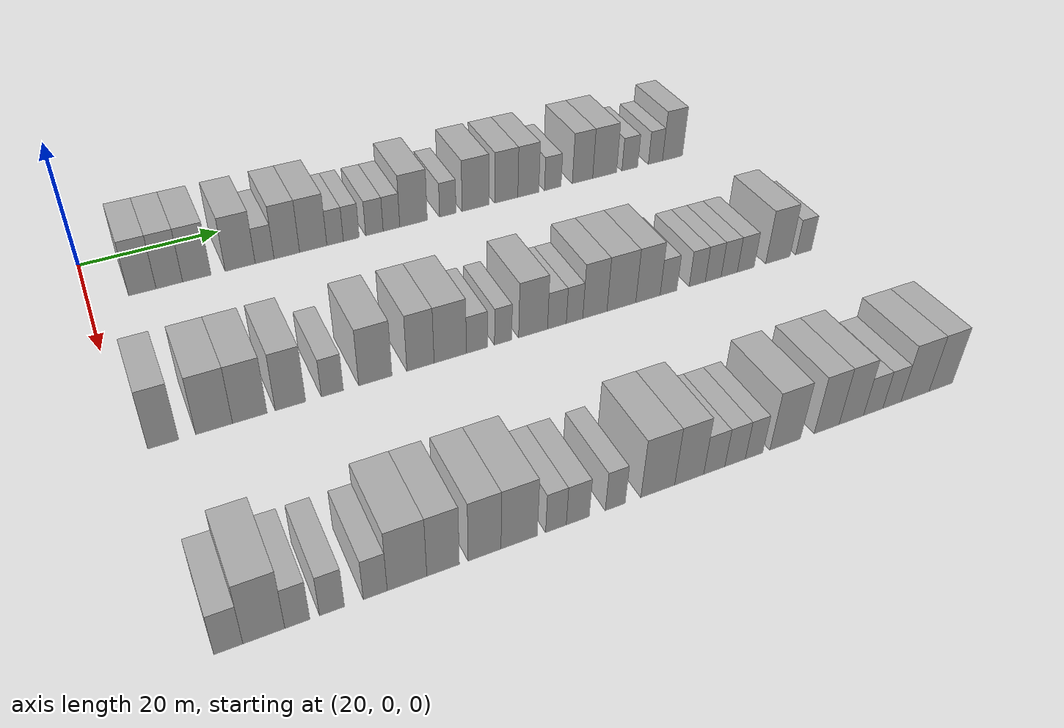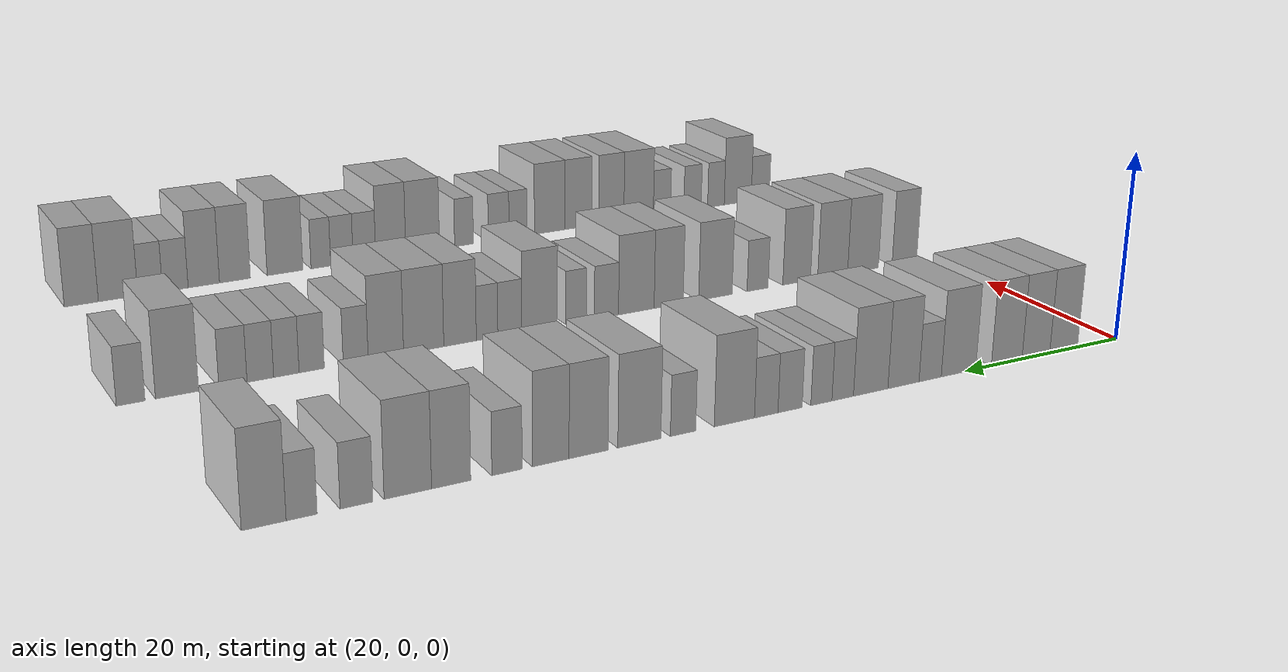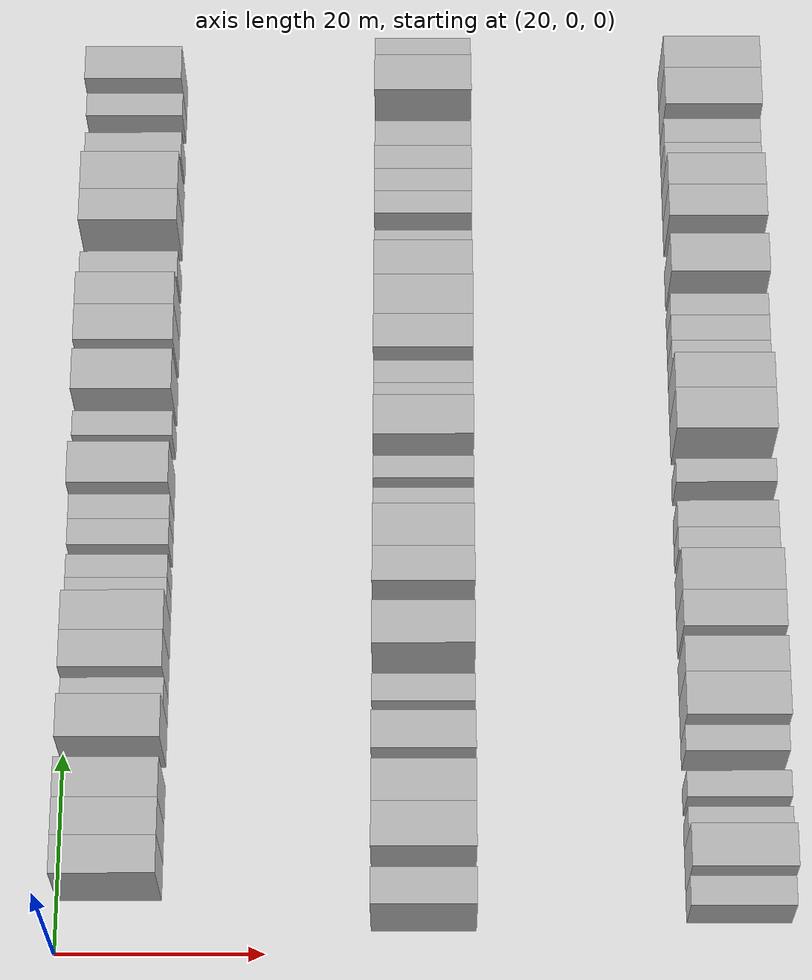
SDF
<sdf version="1.6">
 <world name="default">
  <model name="building_70">
   <static>1</static>
   <pose>25.0000 7.1778 0 0.000000 0.000000 0.000000</pose>
   <link name="link">
    <pose>0 0 4.50 0 0 0</pose>
    <collision name="collision"><geometry><box><size>10.0000 3.7277 9.0000</size></box></geometry></collision>
    <visual name="visual">
     <cast_shadows>0</cast_shadows>
     <geometry><box><size>10.0000 3.7277 9.0000</size></box></geometry>
     <material>
      <script>
       <uri>model://HANNAS_wall/materials/scripts</uri>
       <uri>model://HANNAS_wall/materials/textures</uri>
       <name>vrc/HANNAS_wall</name>
      </script>
     </material>
    </visual>
   </link>
  </model>
  <model name="building_71">
   <static>1</static>
   <pose>25.0000 10.8776 0 0.000000 0.000000 0.000000</pose>
   <link name="link">
    <pose>0 0 4.50 0 0 0</pose>
    <collision name="collision"><geometry><box><size>10.0000 3.6720 9.0000</size></box></geometry></collision>
    <visual name="visual">
     <cast_shadows>0</cast_shadows>
     <geometry><box><size>10.0000 3.6720 9.0000</size></box></geometry>
     <material>
      <script>
       <uri>model://HANNAS_wall/materials/scripts</uri>
       <uri>model://HANNAS_wall/materials/textures</uri>
       <name>vrc/HANNAS_wall</name>
      </script>
     </material>
    </visual>
   </link>
  </model>
  <model name="building_72">
   <static>1</static>
   <pose>25.0000 14.7044 0 0.000000 0.000000 0.000000</pose>
   <link name="link">
    <pose>0 0 4.50 0 0 0</pose>
    <collision name="collision"><geometry><box><size>10.0000 3.9815 9.0000</size></box></geometry></collision>
    <visual name="visual">
     <cast_shadows>0</cast_shadows>
     <geometry><box><size>10.0000 3.9815 9.0000</size></box></geometry>
     <material>
      <script>
       <uri>model://HANNAS_wall/materials/scripts</uri>
       <uri>model://HANNAS_wall/materials/textures</uri>
       <name>vrc/HANNAS_wall</name>
      </script>
     </material>
    </visual>
   </link>
  </model>
  <model name="building_73">
   <static>1</static>
   <pose>25.0000 20.8589 0 0.000000 0.000000 0.000000</pose>
   <link name="link">
    <pose>0 0 4.50 0 0 0</pose>
    <collision name="collision"><geometry><box><size>10.0000 4.3274 9.0000</size></box></geometry></collision>
    <visual name="visual">
     <cast_shadows>0</cast_shadows>
     <geometry><box><size>10.0000 4.3274 9.0000</size></box></geometry>
     <material>
      <script>
       <uri>model://HANNAS_wall/materials/scripts</uri>
       <uri>model://HANNAS_wall/materials/textures</uri>
       <name>vrc/HANNAS_wall</name>
      </script>
     </material>
    </visual>
   </link>
  </model>
  <model name="building_74">
   <static>1</static>
   <pose>25.0000 24.3996 0 0.000000 0.000000 0.000000</pose>
   <link name="link">
    <pose>0 0 3.00 0 0 0</pose>
    <collision name="collision"><geometry><box><size>10.0000 2.7541 6.0000</size></box></geometry></collision>
    <visual name="visual">
     <cast_shadows>0</cast_shadows>
     <geometry><box><size>10.0000 2.7541 6.0000</size></box></geometry>
     <material>
      <script>
       <uri>model://HANNAS_wall/materials/scripts</uri>
       <uri>model://HANNAS_wall/materials/textures</uri>
       <name>vrc/HANNAS_wall</name>
      </script>
     </material>
    </visual>
   </link>
  </model>
  <model name="building_75">
   <static>1</static>
   <pose>25.0000 27.6662 0 0.000000 0.000000 0.000000</pose>
   <link name="link">
    <pose>0 0 4.50 0 0 0</pose>
    <collision name="collision"><geometry><box><size>10.0000 3.7790 9.0000</size></box></geometry></collision>
    <visual name="visual">
     <cast_shadows>0</cast_shadows>
     <geometry><box><size>10.0000 3.7790 9.0000</size></box></geometry>
     <material>
      <script>
       <uri>model://HANNAS_wall/materials/scripts</uri>
       <uri>model://HANNAS_wall/materials/textures</uri>
       <name>vrc/HANNAS_wall</name>
      </script>
     </material>
    </visual>
   </link>
  </model>
  <model name="building_76">
   <static>1</static>
   <pose>25.0000 31.6096 0 0.000000 0.000000 0.000000</pose>
   <link name="link">
    <pose>0 0 4.50 0 0 0</pose>
    <collision name="collision"><geometry><box><size>10.0000 4.1079 9.0000</size></box></geometry></collision>
    <visual name="visual">
     <cast_shadows>0</cast_shadows>
     <geometry><box><size>10.0000 4.1079 9.0000</size></box></geometry>
     <material>
      <script>
       <uri>model://HANNAS_wall/materials/scripts</uri>
       <uri>model://HANNAS_wall/materials/textures</uri>
       <name>vrc/HANNAS_wall</name>
      </script>
     </material>
    </visual>
   </link>
  </model>
  <model name="building_77">
   <static>1</static>
   <pose>25.0000 34.9238 0 0.000000 0.000000 0.000000</pose>
   <link name="link">
    <pose>0 0 3.00 0 0 0</pose>
    <collision name="collision"><geometry><box><size>10.0000 2.5205 6.0000</size></box></geometry></collision>
    <visual name="visual">
     <cast_shadows>0</cast_shadows>
     <geometry><box><size>10.0000 2.5205 6.0000</size></box></geometry>
     <material>
      <script>
       <uri>model://HANNAS_wall/materials/scripts</uri>
       <uri>model://HANNAS_wall/materials/textures</uri>
       <name>vrc/HANNAS_wall</name>
      </script>
     </material>
    </visual>
   </link>
  </model>
  <model name="building_78">
   <static>1</static>
   <pose>25.0000 37.4037 0 0.000000 0.000000 0.000000</pose>
   <link name="link">
    <pose>0 0 3.00 0 0 0</pose>
    <collision name="collision"><geometry><box><size>10.0000 2.4395 6.0000</size></box></geometry></collision>
    <visual name="visual">
     <cast_shadows>0</cast_shadows>
     <geometry><box><size>10.0000 2.4395 6.0000</size></box></geometry>
     <material>
      <script>
       <uri>model://HANNAS_wall/materials/scripts</uri>
       <uri>model://HANNAS_wall/materials/textures</uri>
       <name>vrc/HANNAS_wall</name>
      </script>
     </material>
    </visual>
   </link>
  </model>
  <model name="building_79">
   <static>1</static>
   <pose>25.0000 40.9928 0 0.000000 0.000000 0.000000</pose>
   <link name="link">
    <pose>0 0 3.00 0 0 0</pose>
    <collision name="collision"><geometry><box><size>10.0000 2.7387 6.0000</size></box></geometry></collision>
    <visual name="visual">
     <cast_shadows>0</cast_shadows>
     <geometry><box><size>10.0000 2.7387 6.0000</size></box></geometry>
     <material>
      <script>
       <uri>model://HANNAS_wall/materials/scripts</uri>
       <uri>model://HANNAS_wall/materials/textures</uri>
       <name>vrc/HANNAS_wall</name>
      </script>
     </material>
    </visual>
   </link>
  </model>
  <model name="building_80">
   <static>1</static>
   <pose>25.0000 43.6758 0 0.000000 0.000000 0.000000</pose>
   <link name="link">
    <pose>0 0 3.00 0 0 0</pose>
    <collision name="collision"><geometry><box><size>10.0000 2.6271 6.0000</size></box></geometry></collision>
    <visual name="visual">
     <cast_shadows>0</cast_shadows>
     <geometry><box><size>10.0000 2.6271 6.0000</size></box></geometry>
     <material>
      <script>
       <uri>model://HANNAS_wall/materials/scripts</uri>
       <uri>model://HANNAS_wall/materials/textures</uri>
       <name>vrc/HANNAS_wall</name>
      </script>
     </material>
    </visual>
   </link>
  </model>
  <model name="building_81">
   <static>1</static>
   <pose>25.0000 47.1945 0 0.000000 0.000000 0.000000</pose>
   <link name="link">
    <pose>0 0 4.50 0 0 0</pose>
    <collision name="collision"><geometry><box><size>10.0000 4.4104 9.0000</size></box></geometry></collision>
    <visual name="visual">
     <cast_shadows>0</cast_shadows>
     <geometry><box><size>10.0000 4.4104 9.0000</size></box></geometry>
     <material>
      <script>
       <uri>model://HANNAS_wall/materials/scripts</uri>
       <uri>model://HANNAS_wall/materials/textures</uri>
       <name>vrc/HANNAS_wall</name>
      </script>
     </material>
    </visual>
   </link>
  </model>
  <model name="building_82">
   <static>1</static>
   <pose>25.0000 52.7461 0 0.000000 0.000000 0.000000</pose>
   <link name="link">
    <pose>0 0 3.00 0 0 0</pose>
    <collision name="collision"><geometry><box><size>10.0000 2.6929 6.0000</size></box></geometry></collision>
    <visual name="visual">
     <cast_shadows>0</cast_shadows>
     <geometry><box><size>10.0000 2.6929 6.0000</size></box></geometry>
     <material>
      <script>
       <uri>model://HANNAS_wall/materials/scripts</uri>
       <uri>model://HANNAS_wall/materials/textures</uri>
       <name>vrc/HANNAS_wall</name>
      </script>
     </material>
    </visual>
   </link>
  </model>
  <model name="building_83">
   <static>1</static>
   <pose>25.0000 57.3291 0 0.000000 0.000000 0.000000</pose>
   <link name="link">
    <pose>0 0 4.50 0 0 0</pose>
    <collision name="collision"><geometry><box><size>10.0000 4.4733 9.0000</size></box></geometry></collision>
    <visual name="visual">
     <cast_shadows>0</cast_shadows>
     <geometry><box><size>10.0000 4.4733 9.0000</size></box></geometry>
     <material>
      <script>
       <uri>model://HANNAS_wall/materials/scripts</uri>
       <uri>model://HANNAS_wall/materials/textures</uri>
       <name>vrc/HANNAS_wall</name>
      </script>
     </material>
    </visual>
   </link>
  </model>
  <model name="building_84">
   <static>1</static>
   <pose>25.0000 62.5295 0 0.000000 0.000000 0.000000</pose>
   <link name="link">
    <pose>0 0 4.50 0 0 0</pose>
    <collision name="collision"><geometry><box><size>10.0000 3.9275 9.0000</size></box></geometry></collision>
    <visual name="visual">
     <cast_shadows>0</cast_shadows>
     <geometry><box><size>10.0000 3.9275 9.0000</size></box></geometry>
     <material>
      <script>
       <uri>model://HANNAS_wall/materials/scripts</uri>
       <uri>model://HANNAS_wall/materials/textures</uri>
       <name>vrc/HANNAS_wall</name>
      </script>
     </material>
    </visual>
   </link>
  </model>
  <model name="building_85">
   <static>1</static>
   <pose>25.0000 66.3014 0 0.000000 0.000000 0.000000</pose>
   <link name="link">
    <pose>0 0 4.50 0 0 0</pose>
    <collision name="collision"><geometry><box><size>10.0000 3.6162 9.0000</size></box></geometry></collision>
    <visual name="visual">
     <cast_shadows>0</cast_shadows>
     <geometry><box><size>10.0000 3.6162 9.0000</size></box></geometry>
     <material>
      <script>
       <uri>model://HANNAS_wall/materials/scripts</uri>
       <uri>model://HANNAS_wall/materials/textures</uri>
       <name>vrc/HANNAS_wall</name>
      </script>
     </material>
    </visual>
   </link>
  </model>
  <model name="building_86">
   <static>1</static>
   <pose>25.0000 70.5685 0 0.000000 0.000000 0.000000</pose>
   <link name="link">
    <pose>0 0 3.00 0 0 0</pose>
    <collision name="collision"><geometry><box><size>10.0000 2.9182 6.0000</size></box></geometry></collision>
    <visual name="visual">
     <cast_shadows>0</cast_shadows>
     <geometry><box><size>10.0000 2.9182 6.0000</size></box></geometry>
     <material>
      <script>
       <uri>model://HANNAS_wall/materials/scripts</uri>
       <uri>model://HANNAS_wall/materials/textures</uri>
       <name>vrc/HANNAS_wall</name>
      </script>
     </material>
    </visual>
   </link>
  </model>
  <model name="building_87">
   <static>1</static>
   <pose>25.0000 75.8554 0 0.000000 0.000000 0.000000</pose>
   <link name="link">
    <pose>0 0 4.50 0 0 0</pose>
    <collision name="collision"><geometry><box><size>10.0000 3.6556 9.0000</size></box></geometry></collision>
    <visual name="visual">
     <cast_shadows>0</cast_shadows>
     <geometry><box><size>10.0000 3.6556 9.0000</size></box></geometry>
     <material>
      <script>
       <uri>model://HANNAS_wall/materials/scripts</uri>
       <uri>model://HANNAS_wall/materials/textures</uri>
       <name>vrc/HANNAS_wall</name>
      </script>
     </material>
    </visual>
   </link>
  </model>
  <model name="building_88">
   <static>1</static>
   <pose>25.0000 79.8506 0 0.000000 0.000000 0.000000</pose>
   <link name="link">
    <pose>0 0 4.50 0 0 0</pose>
    <collision name="collision"><geometry><box><size>10.0000 4.3346 9.0000</size></box></geometry></collision>
    <visual name="visual">
     <cast_shadows>0</cast_shadows>
     <geometry><box><size>10.0000 4.3346 9.0000</size></box></geometry>
     <material>
      <script>
       <uri>model://HANNAS_wall/materials/scripts</uri>
       <uri>model://HANNAS_wall/materials/textures</uri>
       <name>vrc/HANNAS_wall</name>
      </script>
     </material>
    </visual>
   </link>
  </model>
  <model name="building_89">
   <static>1</static>
   <pose>25.0000 84.4746 0 0.000000 0.000000 0.000000</pose>
   <link name="link">
    <pose>0 0 3.00 0 0 0</pose>
    <collision name="collision"><geometry><box><size>10.0000 2.9136 6.0000</size></box></geometry></collision>
    <visual name="visual">
     <cast_shadows>0</cast_shadows>
     <geometry><box><size>10.0000 2.9136 6.0000</size></box></geometry>
     <material>
      <script>
       <uri>model://HANNAS_wall/materials/scripts</uri>
       <uri>model://HANNAS_wall/materials/textures</uri>
       <name>vrc/HANNAS_wall</name>
      </script>
     </material>
    </visual>
   </link>
  </model>
  <model name="building_90">
   <static>1</static>
   <pose>25.0000 89.2673 0 0.000000 0.000000 0.000000</pose>
   <link name="link">
    <pose>0 0 3.00 0 0 0</pose>
    <collision name="collision"><geometry><box><size>10.0000 2.6718 6.0000</size></box></geometry></collision>
    <visual name="visual">
     <cast_shadows>0</cast_shadows>
     <geometry><box><size>10.0000 2.6718 6.0000</size></box></geometry>
     <material>
      <script>
       <uri>model://HANNAS_wall/materials/scripts</uri>
       <uri>model://HANNAS_wall/materials/textures</uri>
       <name>vrc/HANNAS_wall</name>
      </script>
     </material>
    </visual>
   </link>
  </model>
  <model name="building_91">
   <static>1</static>
   <pose>25.0000 92.5031 0 0.000000 0.000000 0.000000</pose>
   <link name="link">
    <pose>0 0 4.50 0 0 0</pose>
    <collision name="collision"><geometry><box><size>10.0000 3.7999 9.0000</size></box></geometry></collision>
    <visual name="visual">
     <cast_shadows>0</cast_shadows>
     <geometry><box><size>10.0000 3.7999 9.0000</size></box></geometry>
     <material>
      <script>
       <uri>model://HANNAS_wall/materials/scripts</uri>
       <uri>model://HANNAS_wall/materials/textures</uri>
       <name>vrc/HANNAS_wall</name>
      </script>
     </material>
    </visual>
   </link>
  </model>
  <model name="building_202">
   <static>1</static>
   <pose>55.0000 4.1176 0 0.000000 0.000000 0.000000</pose>
   <link name="link">
    <pose>0 0 4.50 0 0 0</pose>
    <collision name="collision"><geometry><box><size>10.0000 3.6024 9.0000</size></box></geometry></collision>
    <visual name="visual">
     <cast_shadows>0</cast_shadows>
     <geometry><box><size>10.0000 3.6024 9.0000</size></box></geometry>
     <material>
      <script>
       <uri>model://HANNAS_wall/materials/scripts</uri>
       <uri>model://HANNAS_wall/materials/textures</uri>
       <name>vrc/HANNAS_wall</name>
      </script>
     </material>
    </visual>
   </link>
  </model>
  <model name="building_203">
   <static>1</static>
   <pose>55.0000 10.1233 0 0.000000 0.000000 0.000000</pose>
   <link name="link">
    <pose>0 0 4.50 0 0 0</pose>
    <collision name="collision"><geometry><box><size>10.0000 4.4091 9.0000</size></box></geometry></collision>
    <visual name="visual">
     <cast_shadows>0</cast_shadows>
     <geometry><box><size>10.0000 4.4091 9.0000</size></box></geometry>
     <material>
      <script>
       <uri>model://HANNAS_wall/materials/scripts</uri>
       <uri>model://HANNAS_wall/materials/textures</uri>
       <name>vrc/HANNAS_wall</name>
      </script>
     </material>
    </visual>
   </link>
  </model>
  <model name="building_204">
   <static>1</static>
   <pose>55.0000 14.4381 0 0.000000 0.000000 0.000000</pose>
   <link name="link">
    <pose>0 0 4.50 0 0 0</pose>
    <collision name="collision"><geometry><box><size>10.0000 4.2206 9.0000</size></box></geometry></collision>
    <visual name="visual">
     <cast_shadows>0</cast_shadows>
     <geometry><box><size>10.0000 4.2206 9.0000</size></box></geometry>
     <material>
      <script>
       <uri>model://HANNAS_wall/materials/scripts</uri>
       <uri>model://HANNAS_wall/materials/textures</uri>
       <name>vrc/HANNAS_wall</name>
      </script>
     </material>
    </visual>
   </link>
  </model>
  <model name="building_205">
   <static>1</static>
   <pose>55.0000 19.4534 0 0.000000 0.000000 0.000000</pose>
   <link name="link">
    <pose>0 0 4.50 0 0 0</pose>
    <collision name="collision"><geometry><box><size>10.0000 3.8100 9.0000</size></box></geometry></collision>
    <visual name="visual">
     <cast_shadows>0</cast_shadows>
     <geometry><box><size>10.0000 3.8100 9.0000</size></box></geometry>
     <material>
      <script>
       <uri>model://HANNAS_wall/materials/scripts</uri>
       <uri>model://HANNAS_wall/materials/textures</uri>
       <name>vrc/HANNAS_wall</name>
      </script>
     </material>
    </visual>
   </link>
  </model>
  <model name="building_206">
   <static>1</static>
   <pose>55.0000 24.7739 0 0.000000 0.000000 0.000000</pose>
   <link name="link">
    <pose>0 0 3.00 0 0 0</pose>
    <collision name="collision"><geometry><box><size>10.0000 2.8310 6.0000</size></box></geometry></collision>
    <visual name="visual">
     <cast_shadows>0</cast_shadows>
     <geometry><box><size>10.0000 2.8310 6.0000</size></box></geometry>
     <material>
      <script>
       <uri>model://HANNAS_wall/materials/scripts</uri>
       <uri>model://HANNAS_wall/materials/textures</uri>
       <name>vrc/HANNAS_wall</name>
      </script>
     </material>
    </visual>
   </link>
  </model>
  <model name="building_207">
   <static>1</static>
   <pose>55.0000 30.3829 0 0.000000 0.000000 0.000000</pose>
   <link name="link">
    <pose>0 0 4.50 0 0 0</pose>
    <collision name="collision"><geometry><box><size>10.0000 4.3870 9.0000</size></box></geometry></collision>
    <visual name="visual">
     <cast_shadows>0</cast_shadows>
     <geometry><box><size>10.0000 4.3870 9.0000</size></box></geometry>
     <material>
      <script>
       <uri>model://HANNAS_wall/materials/scripts</uri>
       <uri>model://HANNAS_wall/materials/textures</uri>
       <name>vrc/HANNAS_wall</name>
      </script>
     </material>
    </visual>
   </link>
  </model>
  <model name="building_208">
   <static>1</static>
   <pose>55.0000 36.4295 0 0.000000 0.000000 0.000000</pose>
   <link name="link">
    <pose>0 0 4.50 0 0 0</pose>
    <collision name="collision"><geometry><box><size>10.0000 3.7062 9.0000</size></box></geometry></collision>
    <visual name="visual">
     <cast_shadows>0</cast_shadows>
     <geometry><box><size>10.0000 3.7062 9.0000</size></box></geometry>
     <material>
      <script>
       <uri>model://HANNAS_wall/materials/scripts</uri>
       <uri>model://HANNAS_wall/materials/textures</uri>
       <name>vrc/HANNAS_wall</name>
      </script>
     </material>
    </visual>
   </link>
  </model>
  <model name="building_209">
   <static>1</static>
   <pose>55.0000 40.5166 0 0.000000 0.000000 0.000000</pose>
   <link name="link">
    <pose>0 0 4.50 0 0 0</pose>
    <collision name="collision"><geometry><box><size>10.0000 4.4681 9.0000</size></box></geometry></collision>
    <visual name="visual">
     <cast_shadows>0</cast_shadows>
     <geometry><box><size>10.0000 4.4681 9.0000</size></box></geometry>
     <material>
      <script>
       <uri>model://HANNAS_wall/materials/scripts</uri>
       <uri>model://HANNAS_wall/materials/textures</uri>
       <name>vrc/HANNAS_wall</name>
      </script>
     </material>
    </visual>
   </link>
  </model>
  <model name="building_210">
   <static>1</static>
   <pose>55.0000 44.2359 0 0.000000 0.000000 0.000000</pose>
   <link name="link">
    <pose>0 0 3.00 0 0 0</pose>
    <collision name="collision"><geometry><box><size>10.0000 2.9705 6.0000</size></box></geometry></collision>
    <visual name="visual">
     <cast_shadows>0</cast_shadows>
     <geometry><box><size>10.0000 2.9705 6.0000</size></box></geometry>
     <material>
      <script>
       <uri>model://HANNAS_wall/materials/scripts</uri>
       <uri>model://HANNAS_wall/materials/textures</uri>
       <name>vrc/HANNAS_wall</name>
      </script>
     </material>
    </visual>
   </link>
  </model>
  <model name="building_211">
   <static>1</static>
   <pose>55.0000 47.9542 0 0.000000 0.000000 0.000000</pose>
   <link name="link">
    <pose>0 0 3.00 0 0 0</pose>
    <collision name="collision"><geometry><box><size>10.0000 2.4661 6.0000</size></box></geometry></collision>
    <visual name="visual">
     <cast_shadows>0</cast_shadows>
     <geometry><box><size>10.0000 2.4661 6.0000</size></box></geometry>
     <material>
      <script>
       <uri>model://HANNAS_wall/materials/scripts</uri>
       <uri>model://HANNAS_wall/materials/textures</uri>
       <name>vrc/HANNAS_wall</name>
      </script>
     </material>
    </visual>
   </link>
  </model>
  <model name="building_212">
   <static>1</static>
   <pose>55.0000 52.3021 0 0.000000 0.000000 0.000000</pose>
   <link name="link">
    <pose>0 0 4.50 0 0 0</pose>
    <collision name="collision"><geometry><box><size>10.0000 4.2296 9.0000</size></box></geometry></collision>
    <visual name="visual">
     <cast_shadows>0</cast_shadows>
     <geometry><box><size>10.0000 4.2296 9.0000</size></box></geometry>
     <material>
      <script>
       <uri>model://HANNAS_wall/materials/scripts</uri>
       <uri>model://HANNAS_wall/materials/textures</uri>
       <name>vrc/HANNAS_wall</name>
      </script>
     </material>
    </visual>
   </link>
  </model>
  <model name="building_213">
   <static>1</static>
   <pose>55.0000 55.8146 0 0.000000 0.000000 0.000000</pose>
   <link name="link">
    <pose>0 0 3.00 0 0 0</pose>
    <collision name="collision"><geometry><box><size>10.0000 2.7955 6.0000</size></box></geometry></collision>
    <visual name="visual">
     <cast_shadows>0</cast_shadows>
     <geometry><box><size>10.0000 2.7955 6.0000</size></box></geometry>
     <material>
      <script>
       <uri>model://HANNAS_wall/materials/scripts</uri>
       <uri>model://HANNAS_wall/materials/textures</uri>
       <name>vrc/HANNAS_wall</name>
      </script>
     </material>
    </visual>
   </link>
  </model>
  <model name="building_214">
   <static>1</static>
   <pose>55.0000 58.4527 0 0.000000 0.000000 0.000000</pose>
   <link name="link">
    <pose>0 0 3.00 0 0 0</pose>
    <collision name="collision"><geometry><box><size>10.0000 2.4807 6.0000</size></box></geometry></collision>
    <visual name="visual">
     <cast_shadows>0</cast_shadows>
     <geometry><box><size>10.0000 2.4807 6.0000</size></box></geometry>
     <material>
      <script>
       <uri>model://HANNAS_wall/materials/scripts</uri>
       <uri>model://HANNAS_wall/materials/textures</uri>
       <name>vrc/HANNAS_wall</name>
      </script>
     </material>
    </visual>
   </link>
  </model>
  <model name="building_215">
   <static>1</static>
   <pose>55.0000 61.5407 0 0.000000 0.000000 0.000000</pose>
   <link name="link">
    <pose>0 0 4.50 0 0 0</pose>
    <collision name="collision"><geometry><box><size>10.0000 3.6954 9.0000</size></box></geometry></collision>
    <visual name="visual">
     <cast_shadows>0</cast_shadows>
     <geometry><box><size>10.0000 3.6954 9.0000</size></box></geometry>
     <material>
      <script>
       <uri>model://HANNAS_wall/materials/scripts</uri>
       <uri>model://HANNAS_wall/materials/textures</uri>
       <name>vrc/HANNAS_wall</name>
      </script>
     </material>
    </visual>
   </link>
  </model>
  <model name="building_216">
   <static>1</static>
   <pose>55.0000 65.6251 0 0.000000 0.000000 0.000000</pose>
   <link name="link">
    <pose>0 0 4.50 0 0 0</pose>
    <collision name="collision"><geometry><box><size>10.0000 4.4733 9.0000</size></box></geometry></collision>
    <visual name="visual">
     <cast_shadows>0</cast_shadows>
     <geometry><box><size>10.0000 4.4733 9.0000</size></box></geometry>
     <material>
      <script>
       <uri>model://HANNAS_wall/materials/scripts</uri>
       <uri>model://HANNAS_wall/materials/textures</uri>
       <name>vrc/HANNAS_wall</name>
      </script>
     </material>
    </visual>
   </link>
  </model>
  <model name="building_217">
   <static>1</static>
   <pose>55.0000 69.7900 0 0.000000 0.000000 0.000000</pose>
   <link name="link">
    <pose>0 0 4.50 0 0 0</pose>
    <collision name="collision"><geometry><box><size>10.0000 3.8564 9.0000</size></box></geometry></collision>
    <visual name="visual">
     <cast_shadows>0</cast_shadows>
     <geometry><box><size>10.0000 3.8564 9.0000</size></box></geometry>
     <material>
      <script>
       <uri>model://HANNAS_wall/materials/scripts</uri>
       <uri>model://HANNAS_wall/materials/textures</uri>
       <name>vrc/HANNAS_wall</name>
      </script>
     </material>
    </visual>
   </link>
  </model>
  <model name="building_218">
   <static>1</static>
   <pose>55.0000 73.0594 0 0.000000 0.000000 0.000000</pose>
   <link name="link">
    <pose>0 0 3.00 0 0 0</pose>
    <collision name="collision"><geometry><box><size>10.0000 2.6823 6.0000</size></box></geometry></collision>
    <visual name="visual">
     <cast_shadows>0</cast_shadows>
     <geometry><box><size>10.0000 2.6823 6.0000</size></box></geometry>
     <material>
      <script>
       <uri>model://HANNAS_wall/materials/scripts</uri>
       <uri>model://HANNAS_wall/materials/textures</uri>
       <name>vrc/HANNAS_wall</name>
      </script>
     </material>
    </visual>
   </link>
  </model>
  <model name="building_219">
   <static>1</static>
   <pose>55.0000 77.7243 0 0.000000 0.000000 0.000000</pose>
   <link name="link">
    <pose>0 0 3.00 0 0 0</pose>
    <collision name="collision"><geometry><box><size>10.0000 2.6475 6.0000</size></box></geometry></collision>
    <visual name="visual">
     <cast_shadows>0</cast_shadows>
     <geometry><box><size>10.0000 2.6475 6.0000</size></box></geometry>
     <material>
      <script>
       <uri>model://HANNAS_wall/materials/scripts</uri>
       <uri>model://HANNAS_wall/materials/textures</uri>
       <name>vrc/HANNAS_wall</name>
      </script>
     </material>
    </visual>
   </link>
  </model>
  <model name="building_220">
   <static>1</static>
   <pose>55.0000 80.3623 0 0.000000 0.000000 0.000000</pose>
   <link name="link">
    <pose>0 0 3.00 0 0 0</pose>
    <collision name="collision"><geometry><box><size>10.0000 2.6285 6.0000</size></box></geometry></collision>
    <visual name="visual">
     <cast_shadows>0</cast_shadows>
     <geometry><box><size>10.0000 2.6285 6.0000</size></box></geometry>
     <material>
      <script>
       <uri>model://HANNAS_wall/materials/scripts</uri>
       <uri>model://HANNAS_wall/materials/textures</uri>
       <name>vrc/HANNAS_wall</name>
      </script>
     </material>
    </visual>
   </link>
  </model>
  <model name="building_221">
   <static>1</static>
   <pose>55.0000 83.0373 0 0.000000 0.000000 0.000000</pose>
   <link name="link">
    <pose>0 0 3.00 0 0 0</pose>
    <collision name="collision"><geometry><box><size>10.0000 2.7214 6.0000</size></box></geometry></collision>
    <visual name="visual">
     <cast_shadows>0</cast_shadows>
     <geometry><box><size>10.0000 2.7214 6.0000</size></box></geometry>
     <material>
      <script>
       <uri>model://HANNAS_wall/materials/scripts</uri>
       <uri>model://HANNAS_wall/materials/textures</uri>
       <name>vrc/HANNAS_wall</name>
      </script>
     </material>
    </visual>
   </link>
  </model>
  <model name="building_222">
   <static>1</static>
   <pose>55.0000 85.8175 0 0.000000 0.000000 0.000000</pose>
   <link name="link">
    <pose>0 0 3.00 0 0 0</pose>
    <collision name="collision"><geometry><box><size>10.0000 2.8389 6.0000</size></box></geometry></collision>
    <visual name="visual">
     <cast_shadows>0</cast_shadows>
     <geometry><box><size>10.0000 2.8389 6.0000</size></box></geometry>
     <material>
      <script>
       <uri>model://HANNAS_wall/materials/scripts</uri>
       <uri>model://HANNAS_wall/materials/textures</uri>
       <name>vrc/HANNAS_wall</name>
      </script>
     </material>
    </visual>
   </link>
  </model>
  <model name="building_223">
   <static>1</static>
   <pose>55.0000 91.3495 0 0.000000 0.000000 0.000000</pose>
   <link name="link">
    <pose>0 0 4.50 0 0 0</pose>
    <collision name="collision"><geometry><box><size>10.0000 4.2250 9.0000</size></box></geometry></collision>
    <visual name="visual">
     <cast_shadows>0</cast_shadows>
     <geometry><box><size>10.0000 4.2250 9.0000</size></box></geometry>
     <material>
      <script>
       <uri>model://HANNAS_wall/materials/scripts</uri>
       <uri>model://HANNAS_wall/materials/textures</uri>
       <name>vrc/HANNAS_wall</name>
      </script>
     </material>
    </visual>
   </link>
  </model>
  <model name="building_224">
   <static>1</static>
   <pose>55.0000 95.8402 0 0.000000 0.000000 0.000000</pose>
   <link name="link">
    <pose>0 0 3.00 0 0 0</pose>
    <collision name="collision"><geometry><box><size>10.0000 2.7562 6.0000</size></box></geometry></collision>
    <visual name="visual">
     <cast_shadows>0</cast_shadows>
     <geometry><box><size>10.0000 2.7562 6.0000</size></box></geometry>
     <material>
      <script>
       <uri>model://HANNAS_wall/materials/scripts</uri>
       <uri>model://HANNAS_wall/materials/textures</uri>
       <name>vrc/HANNAS_wall</name>
      </script>
     </material>
    </visual>
   </link>
  </model>
  <model name="building_339">
   <static>1</static>
   <pose>85.0000 4.4862 0 0.000000 0.000000 0.000000</pose>
   <link name="link">
    <pose>0 0 3.00 0 0 0</pose>
    <collision name="collision"><geometry><box><size>10.0000 2.8638 6.0000</size></box></geometry></collision>
    <visual name="visual">
     <cast_shadows>0</cast_shadows>
     <geometry><box><size>10.0000 2.8638 6.0000</size></box></geometry>
     <material>
      <script>
       <uri>model://HANNAS_wall/materials/scripts</uri>
       <uri>model://HANNAS_wall/materials/textures</uri>
       <name>vrc/HANNAS_wall</name>
      </script>
     </material>
    </visual>
   </link>
  </model>
  <model name="building_340">
   <static>1</static>
   <pose>85.0000 8.0243 0 0.000000 0.000000 0.000000</pose>
   <link name="link">
    <pose>0 0 4.50 0 0 0</pose>
    <collision name="collision"><geometry><box><size>10.0000 4.2124 9.0000</size></box></geometry></collision>
    <visual name="visual">
     <cast_shadows>0</cast_shadows>
     <geometry><box><size>10.0000 4.2124 9.0000</size></box></geometry>
     <material>
      <script>
       <uri>model://HANNAS_wall/materials/scripts</uri>
       <uri>model://HANNAS_wall/materials/textures</uri>
       <name>vrc/HANNAS_wall</name>
      </script>
     </material>
    </visual>
   </link>
  </model>
  <model name="building_341">
   <static>1</static>
   <pose>85.0000 11.4112 0 0.000000 0.000000 0.000000</pose>
   <link name="link">
    <pose>0 0 3.00 0 0 0</pose>
    <collision name="collision"><geometry><box><size>10.0000 2.5613 6.0000</size></box></geometry></collision>
    <visual name="visual">
     <cast_shadows>0</cast_shadows>
     <geometry><box><size>10.0000 2.5613 6.0000</size></box></geometry>
     <material>
      <script>
       <uri>model://HANNAS_wall/materials/scripts</uri>
       <uri>model://HANNAS_wall/materials/textures</uri>
       <name>vrc/HANNAS_wall</name>
      </script>
     </material>
    </visual>
   </link>
  </model>
  <model name="building_342">
   <static>1</static>
   <pose>85.0000 14.9995 0 0.000000 0.000000 0.000000</pose>
   <link name="link">
    <pose>0 0 3.00 0 0 0</pose>
    <collision name="collision"><geometry><box><size>10.0000 2.6152 6.0000</size></box></geometry></collision>
    <visual name="visual">
     <cast_shadows>0</cast_shadows>
     <geometry><box><size>10.0000 2.6152 6.0000</size></box></geometry>
     <material>
      <script>
       <uri>model://HANNAS_wall/materials/scripts</uri>
       <uri>model://HANNAS_wall/materials/textures</uri>
       <name>vrc/HANNAS_wall</name>
      </script>
     </material>
    </visual>
   </link>
  </model>
  <model name="building_343">
   <static>1</static>
   <pose>85.0000 19.5948 0 0.000000 0.000000 0.000000</pose>
   <link name="link">
    <pose>0 0 3.00 0 0 0</pose>
    <collision name="collision"><geometry><box><size>10.0000 2.5754 6.0000</size></box></geometry></collision>
    <visual name="visual">
     <cast_shadows>0</cast_shadows>
     <geometry><box><size>10.0000 2.5754 6.0000</size></box></geometry>
     <material>
      <script>
       <uri>model://HANNAS_wall/materials/scripts</uri>
       <uri>model://HANNAS_wall/materials/textures</uri>
       <name>vrc/HANNAS_wall</name>
      </script>
     </material>
    </visual>
   </link>
  </model>
  <model name="building_344">
   <static>1</static>
   <pose>85.0000 23.0541 0 0.000000 0.000000 0.000000</pose>
   <link name="link">
    <pose>0 0 4.50 0 0 0</pose>
    <collision name="collision"><geometry><box><size>10.0000 4.3432 9.0000</size></box></geometry></collision>
    <visual name="visual">
     <cast_shadows>0</cast_shadows>
     <geometry><box><size>10.0000 4.3432 9.0000</size></box></geometry>
     <material>
      <script>
       <uri>model://HANNAS_wall/materials/scripts</uri>
       <uri>model://HANNAS_wall/materials/textures</uri>
       <name>vrc/HANNAS_wall</name>
      </script>
     </material>
    </visual>
   </link>
  </model>
  <model name="building_345">
   <static>1</static>
   <pose>85.0000 27.0541 0 0.000000 0.000000 0.000000</pose>
   <link name="link">
    <pose>0 0 4.50 0 0 0</pose>
    <collision name="collision"><geometry><box><size>10.0000 3.6568 9.0000</size></box></geometry></collision>
    <visual name="visual">
     <cast_shadows>0</cast_shadows>
     <geometry><box><size>10.0000 3.6568 9.0000</size></box></geometry>
     <material>
      <script>
       <uri>model://HANNAS_wall/materials/scripts</uri>
       <uri>model://HANNAS_wall/materials/textures</uri>
       <name>vrc/HANNAS_wall</name>
      </script>
     </material>
    </visual>
   </link>
  </model>
  <model name="building_346">
   <static>1</static>
   <pose>85.0000 31.7793 0 0.000000 0.000000 0.000000</pose>
   <link name="link">
    <pose>0 0 4.50 0 0 0</pose>
    <collision name="collision"><geometry><box><size>10.0000 3.7936 9.0000</size></box></geometry></collision>
    <visual name="visual">
     <cast_shadows>0</cast_shadows>
     <geometry><box><size>10.0000 3.7936 9.0000</size></box></geometry>
     <material>
      <script>
       <uri>model://HANNAS_wall/materials/scripts</uri>
       <uri>model://HANNAS_wall/materials/textures</uri>
       <name>vrc/HANNAS_wall</name>
      </script>
     </material>
    </visual>
   </link>
  </model>
  <model name="building_347">
   <static>1</static>
   <pose>85.0000 35.8178 0 0.000000 0.000000 0.000000</pose>
   <link name="link">
    <pose>0 0 4.50 0 0 0</pose>
    <collision name="collision"><geometry><box><size>10.0000 4.2834 9.0000</size></box></geometry></collision>
    <visual name="visual">
     <cast_shadows>0</cast_shadows>
     <geometry><box><size>10.0000 4.2834 9.0000</size></box></geometry>
     <material>
      <script>
       <uri>model://HANNAS_wall/materials/scripts</uri>
       <uri>model://HANNAS_wall/materials/textures</uri>
       <name>vrc/HANNAS_wall</name>
      </script>
     </material>
    </visual>
   </link>
  </model>
  <model name="building_348">
   <static>1</static>
   <pose>85.0000 40.2103 0 0.000000 0.000000 0.000000</pose>
   <link name="link">
    <pose>0 0 3.00 0 0 0</pose>
    <collision name="collision"><geometry><box><size>10.0000 2.5017 6.0000</size></box></geometry></collision>
    <visual name="visual">
     <cast_shadows>0</cast_shadows>
     <geometry><box><size>10.0000 2.5017 6.0000</size></box></geometry>
     <material>
      <script>
       <uri>model://HANNAS_wall/materials/scripts</uri>
       <uri>model://HANNAS_wall/materials/textures</uri>
       <name>vrc/HANNAS_wall</name>
      </script>
     </material>
    </visual>
   </link>
  </model>
  <model name="building_349">
   <static>1</static>
   <pose>85.0000 42.8747 0 0.000000 0.000000 0.000000</pose>
   <link name="link">
    <pose>0 0 3.00 0 0 0</pose>
    <collision name="collision"><geometry><box><size>10.0000 2.8271 6.0000</size></box></geometry></collision>
    <visual name="visual">
     <cast_shadows>0</cast_shadows>
     <geometry><box><size>10.0000 2.8271 6.0000</size></box></geometry>
     <material>
      <script>
       <uri>model://HANNAS_wall/materials/scripts</uri>
       <uri>model://HANNAS_wall/materials/textures</uri>
       <name>vrc/HANNAS_wall</name>
      </script>
     </material>
    </visual>
   </link>
  </model>
  <model name="building_350">
   <static>1</static>
   <pose>85.0000 47.5408 0 0.000000 0.000000 0.000000</pose>
   <link name="link">
    <pose>0 0 3.00 0 0 0</pose>
    <collision name="collision"><geometry><box><size>10.0000 2.5051 6.0000</size></box></geometry></collision>
    <visual name="visual">
     <cast_shadows>0</cast_shadows>
     <geometry><box><size>10.0000 2.5051 6.0000</size></box></geometry>
     <material>
      <script>
       <uri>model://HANNAS_wall/materials/scripts</uri>
       <uri>model://HANNAS_wall/materials/textures</uri>
       <name>vrc/HANNAS_wall</name>
      </script>
     </material>
    </visual>
   </link>
  </model>
  <model name="building_351">
   <static>1</static>
   <pose>85.0000 52.9918 0 0.000000 0.000000 0.000000</pose>
   <link name="link">
    <pose>0 0 4.50 0 0 0</pose>
    <collision name="collision"><geometry><box><size>10.0000 4.3971 9.0000</size></box></geometry></collision>
    <visual name="visual">
     <cast_shadows>0</cast_shadows>
     <geometry><box><size>10.0000 4.3971 9.0000</size></box></geometry>
     <material>
      <script>
       <uri>model://HANNAS_wall/materials/scripts</uri>
       <uri>model://HANNAS_wall/materials/textures</uri>
       <name>vrc/HANNAS_wall</name>
      </script>
     </material>
    </visual>
   </link>
  </model>
  <model name="building_352">
   <static>1</static>
   <pose>85.0000 57.1162 0 0.000000 0.000000 0.000000</pose>
   <link name="link">
    <pose>0 0 4.50 0 0 0</pose>
    <collision name="collision"><geometry><box><size>10.0000 3.8516 9.0000</size></box></geometry></collision>
    <visual name="visual">
     <cast_shadows>0</cast_shadows>
     <geometry><box><size>10.0000 3.8516 9.0000</size></box></geometry>
     <material>
      <script>
       <uri>model://HANNAS_wall/materials/scripts</uri>
       <uri>model://HANNAS_wall/materials/textures</uri>
       <name>vrc/HANNAS_wall</name>
      </script>
     </material>
    </visual>
   </link>
  </model>
  <model name="building_353">
   <static>1</static>
   <pose>85.0000 60.4735 0 0.000000 0.000000 0.000000</pose>
   <link name="link">
    <pose>0 0 3.00 0 0 0</pose>
    <collision name="collision"><geometry><box><size>10.0000 2.8630 6.0000</size></box></geometry></collision>
    <visual name="visual">
     <cast_shadows>0</cast_shadows>
     <geometry><box><size>10.0000 2.8630 6.0000</size></box></geometry>
     <material>
      <script>
       <uri>model://HANNAS_wall/materials/scripts</uri>
       <uri>model://HANNAS_wall/materials/textures</uri>
       <name>vrc/HANNAS_wall</name>
      </script>
     </material>
    </visual>
   </link>
  </model>
  <model name="building_354">
   <static>1</static>
   <pose>85.0000 63.3069 0 0.000000 0.000000 0.000000</pose>
   <link name="link">
    <pose>0 0 3.00 0 0 0</pose>
    <collision name="collision"><geometry><box><size>10.0000 2.8037 6.0000</size></box></geometry></collision>
    <visual name="visual">
     <cast_shadows>0</cast_shadows>
     <geometry><box><size>10.0000 2.8037 6.0000</size></box></geometry>
     <material>
      <script>
       <uri>model://HANNAS_wall/materials/scripts</uri>
       <uri>model://HANNAS_wall/materials/textures</uri>
       <name>vrc/HANNAS_wall</name>
      </script>
     </material>
    </visual>
   </link>
  </model>
  <model name="building_355">
   <static>1</static>
   <pose>85.0000 65.9221 0 0.000000 0.000000 0.000000</pose>
   <link name="link">
    <pose>0 0 3.00 0 0 0</pose>
    <collision name="collision"><geometry><box><size>10.0000 2.4266 6.0000</size></box></geometry></collision>
    <visual name="visual">
     <cast_shadows>0</cast_shadows>
     <geometry><box><size>10.0000 2.4266 6.0000</size></box></geometry>
     <material>
      <script>
       <uri>model://HANNAS_wall/materials/scripts</uri>
       <uri>model://HANNAS_wall/materials/textures</uri>
       <name>vrc/HANNAS_wall</name>
      </script>
     </material>
    </visual>
   </link>
  </model>
  <model name="building_356">
   <static>1</static>
   <pose>85.0000 70.3062 0 0.000000 0.000000 0.000000</pose>
   <link name="link">
    <pose>0 0 4.50 0 0 0</pose>
    <collision name="collision"><geometry><box><size>10.0000 4.3417 9.0000</size></box></geometry></collision>
    <visual name="visual">
     <cast_shadows>0</cast_shadows>
     <geometry><box><size>10.0000 4.3417 9.0000</size></box></geometry>
     <material>
      <script>
       <uri>model://HANNAS_wall/materials/scripts</uri>
       <uri>model://HANNAS_wall/materials/textures</uri>
       <name>vrc/HANNAS_wall</name>
      </script>
     </material>
    </visual>
   </link>
  </model>
  <model name="building_357">
   <static>1</static>
   <pose>85.0000 76.3014 0 0.000000 0.000000 0.000000</pose>
   <link name="link">
    <pose>0 0 4.50 0 0 0</pose>
    <collision name="collision"><geometry><box><size>10.0000 3.6485 9.0000</size></box></geometry></collision>
    <visual name="visual">
     <cast_shadows>0</cast_shadows>
     <geometry><box><size>10.0000 3.6485 9.0000</size></box></geometry>
     <material>
      <script>
       <uri>model://HANNAS_wall/materials/scripts</uri>
       <uri>model://HANNAS_wall/materials/textures</uri>
       <name>vrc/HANNAS_wall</name>
      </script>
     </material>
    </visual>
   </link>
  </model>
  <model name="building_358">
   <static>1</static>
   <pose>85.0000 79.9512 0 0.000000 0.000000 0.000000</pose>
   <link name="link">
    <pose>0 0 4.50 0 0 0</pose>
    <collision name="collision"><geometry><box><size>10.0000 3.6512 9.0000</size></box></geometry></collision>
    <visual name="visual">
     <cast_shadows>0</cast_shadows>
     <geometry><box><size>10.0000 3.6512 9.0000</size></box></geometry>
     <material>
      <script>
       <uri>model://HANNAS_wall/materials/scripts</uri>
       <uri>model://HANNAS_wall/materials/textures</uri>
       <name>vrc/HANNAS_wall</name>
      </script>
     </material>
    </visual>
   </link>
  </model>
  <model name="building_359">
   <static>1</static>
   <pose>85.0000 83.2402 0 0.000000 0.000000 0.000000</pose>
   <link name="link">
    <pose>0 0 3.00 0 0 0</pose>
    <collision name="collision"><geometry><box><size>10.0000 2.9266 6.0000</size></box></geometry></collision>
    <visual name="visual">
     <cast_shadows>0</cast_shadows>
     <geometry><box><size>10.0000 2.9266 6.0000</size></box></geometry>
     <material>
      <script>
       <uri>model://HANNAS_wall/materials/scripts</uri>
       <uri>model://HANNAS_wall/materials/textures</uri>
       <name>vrc/HANNAS_wall</name>
      </script>
     </material>
    </visual>
   </link>
  </model>
  <model name="building_360">
   <static>1</static>
   <pose>85.0000 86.1026 0 0.000000 0.000000 0.000000</pose>
   <link name="link">
    <pose>0 0 3.00 0 0 0</pose>
    <collision name="collision"><geometry><box><size>10.0000 2.7983 6.0000</size></box></geometry></collision>
    <visual name="visual">
     <cast_shadows>0</cast_shadows>
     <geometry><box><size>10.0000 2.7983 6.0000</size></box></geometry>
     <material>
      <script>
       <uri>model://HANNAS_wall/materials/scripts</uri>
       <uri>model://HANNAS_wall/materials/textures</uri>
       <name>vrc/HANNAS_wall</name>
      </script>
     </material>
    </visual>
   </link>
  </model>
  <model name="building_361">
   <static>1</static>
   <pose>85.0000 89.7027 0 0.000000 0.000000 0.000000</pose>
   <link name="link">
    <pose>0 0 4.50 0 0 0</pose>
    <collision name="collision"><geometry><box><size>10.0000 4.4019 9.0000</size></box></geometry></collision>
    <visual name="visual">
     <cast_shadows>0</cast_shadows>
     <geometry><box><size>10.0000 4.4019 9.0000</size></box></geometry>
     <material>
      <script>
       <uri>model://HANNAS_wall/materials/scripts</uri>
       <uri>model://HANNAS_wall/materials/textures</uri>
       <name>vrc/HANNAS_wall</name>
      </script>
     </material>
    </visual>
   </link>
  </model>
  <model name="building_362">
   <static>1</static>
   <pose>85.0000 93.7673 0 0.000000 0.000000 0.000000</pose>
   <link name="link">
    <pose>0 0 4.50 0 0 0</pose>
    <collision name="collision"><geometry><box><size>10.0000 3.7273 9.0000</size></box></geometry></collision>
    <visual name="visual">
     <cast_shadows>0</cast_shadows>
     <geometry><box><size>10.0000 3.7273 9.0000</size></box></geometry>
     <material>
      <script>
       <uri>model://HANNAS_wall/materials/scripts</uri>
       <uri>model://HANNAS_wall/materials/textures</uri>
       <name>vrc/HANNAS_wall</name>
      </script>
     </material>
    </visual>
   </link>
  </model>
 </world>
</sdf>
